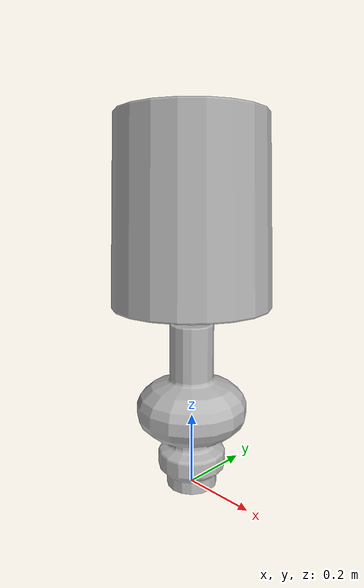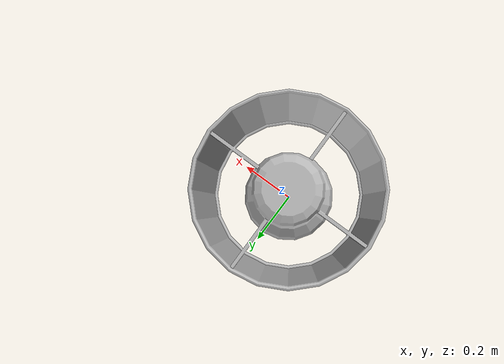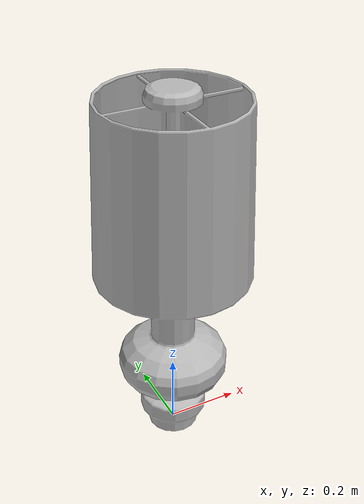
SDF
<?xml version='1.0'?>
<sdf version='1.4'>
  <model name='s__1983'>
    <pose>0 0 0 0 0 0</pose>
    <static>true</static>
    <link name='link'>
      <collision name='collision'>
        <pose>0 0 0 0 0 0</pose>
        <geometry>
          <box>
            <size>0.42 0.42 2</size>
          </box>
        </geometry>
      </collision>
      <visual name='visual'>
        <pose>0 0 0 0 0 0</pose>
        <geometry>
          <mesh><uri>model://s__1983/s__1983.dae</uri></mesh>
        </geometry>
      </visual>
    </link>
  </model>
</sdf>
